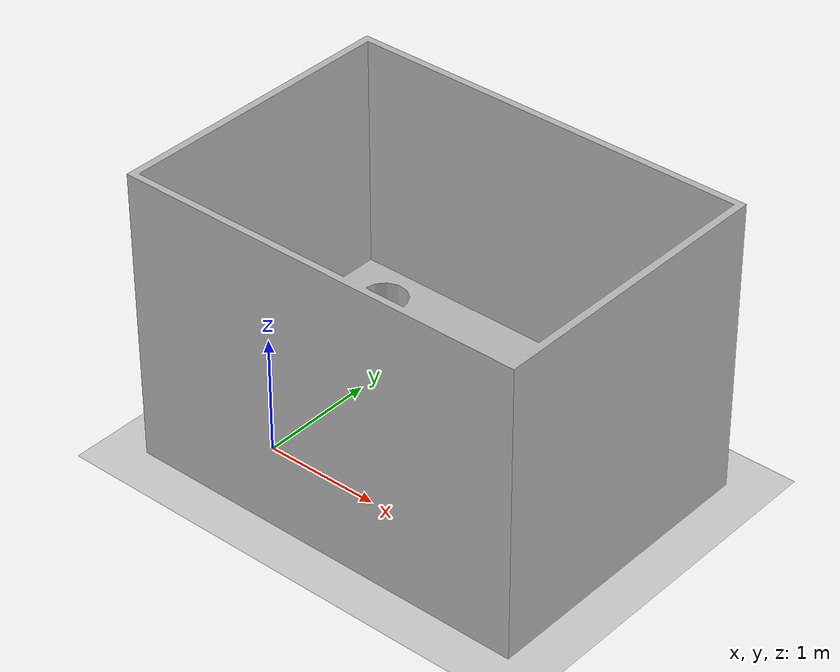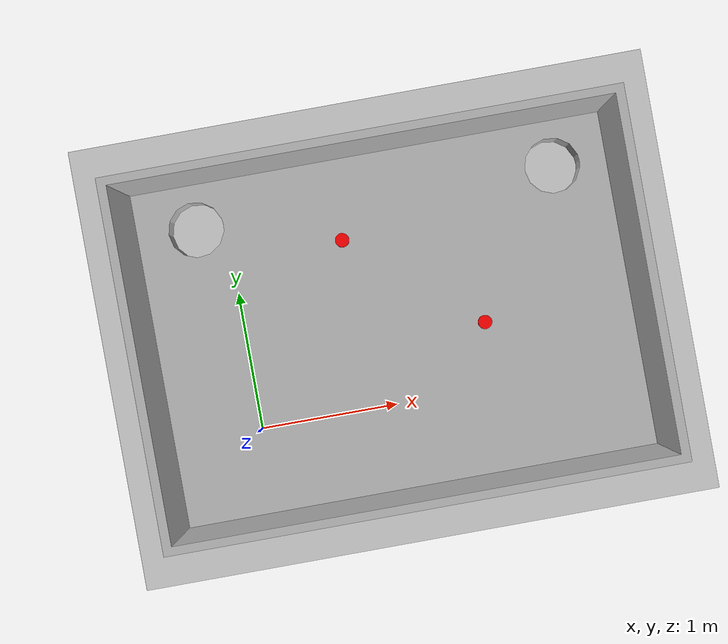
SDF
<sdf version="1.6">
 <world name="default">
  <light name="sun" type="directional">
   <pose>0 0 10 0 -0 0</pose>
   <diffuse>0.8 0.8 0.8 1</diffuse>
   <specular>0.1 0.1 0.1 1</specular>
   <attenuation>
    <range>1000</range>
    <constant>0.9</constant>
    <linear>0.01</linear>
    <quadratic>0.001</quadratic>
   </attenuation>
   <direction>-0.5 0.5 -1</direction>
  </light>
  <model name="ground_plane">
   <static>1</static>
   <link name="link">
    <collision name="collision">
     <geometry><plane><normal>0 0 1</normal><size>100 100</size></plane></geometry>
     <surface><friction><ode><mu>100</mu><mu2>50</mu2></ode></friction></surface>
    </collision>
    <visual name="visual">
     <cast_shadows>0</cast_shadows>
     <geometry><plane><normal>0 0 1</normal><size>100 100</size></plane></geometry>
     <material>
      <script><uri>file://media/materials/scripts/gazebo.material</uri><name>Gazebo/Grey</name></script>
     </material>
    </visual>
   </link>
  </model>
  <gravity>0 0 -9.8</gravity>
  <magnetic_field>6e-06 2.3e-05 -4.2e-05</magnetic_field>
  <atmosphere type="adiabatic"/>
  <physics name="default_physics" default="0" type="ode">
   <max_step_size>0.001</max_step_size>
   <real_time_factor>1</real_time_factor>
   <real_time_update_rate>1000</real_time_update_rate>
  </physics>
  <scene><ambient>0.4 0.4 0.4 1</ambient><background>0.7 0.7 0.7 1</background><shadows>1</shadows></scene>
  <spherical_coordinates>
   <surface_model>EARTH_WGS84</surface_model>
   <latitude_deg>0</latitude_deg>
   <longitude_deg>0</longitude_deg>
   <elevation>0</elevation>
   <heading_deg>0</heading_deg>
  </spherical_coordinates>
  <model name="Part1">
   <link name="urdf_package">
    <inertial>
     <pose>1.6811 -0.55929 1.1918 0 -0 0</pose>
     <mass>5806.9</mass>
     <inertia>
      <ixx>6148.39</ixx>
      <ixy>-0.71938</ixy>
      <ixz>-2.11248</ixz>
      <iyy>11071.9</iyy>
      <iyz>32.929</iyz>
      <izz>9442.58</izz>
     </inertia>
    </inertial>
    <collision name="urdf_package_collision">
     <pose>0 0 0 1.5708 -0 0</pose>
     <geometry>
      <mesh>
       <scale>1 1 1</scale>
       <uri>../catkin_ws/src/project_x_ecobot/data/urdf_package/meshes/turtlebot_world_col.STL</uri>
      </mesh>
     </geometry>
    </collision>
    <visual name="urdf_package_visual">
     <pose>0 0 0 1.5708 -0 0</pose>
     <geometry>
      <mesh>
       <scale>1 1 1</scale>
       <uri>../catkin_ws/src/project_x_ecobot/data/urdf_package/meshes/turtlebot_world.STL</uri>
      </mesh>
     </geometry>
    </visual>
   </link>
   <pose>-0.599242 -0.600007 -0.001892 -1.5708 3e-06 0.000398</pose>
  </model>
  <model name="trash_unit_cylinder_0">
   <link name="link">
    <inertial>
     <mass>0.01</mass>
     <inertia><ixx>0.145833</ixx><ixy>0</ixy><ixz>0</ixz><iyy>0.145833</iyy><iyz>0</iyz><izz>0.125</izz></inertia>
    </inertial>
    <visual name="visual">
     <geometry><cylinder><radius>0.05</radius><length>0.1</length></cylinder></geometry>
     <material>
      <script><name>Gazebo/Grey</name><uri>file://media/materials/scripts/gazebo.material</uri></script>
      <ambient>1 0 0 1</ambient>
      <diffuse>1 0 0 1</diffuse>
      <specular>0.01 0.01 0.01 1</specular>
      <emissive>0 0 0 1</emissive>
      <shader type="vertex"><normal_map>__default__</normal_map></shader>
     </material>
    </visual>
    <collision name="collision">
     <geometry><cylinder><radius>0.05</radius><length>0.1</length></cylinder></geometry>
     <surface>
      <friction>
       <ode><mu>1</mu><mu2>1</mu2><fdir1>0 0 0</fdir1><slip1>0</slip1><slip2>0</slip2></ode>
       <torsional>
        <coefficient>1</coefficient>
        <patch_radius>0</patch_radius>
        <surface_radius>0</surface_radius>
        <use_patch_radius>1</use_patch_radius>
        <ode><slip>0</slip></ode>
       </torsional>
      </friction>
      <bounce><restitution_coefficient>0</restitution_coefficient><threshold>1e+06</threshold></bounce>
      <contact>
       <collide_without_contact>0</collide_without_contact>
       <collide_without_contact_bitmask>1</collide_without_contact_bitmask>
       <collide_bitmask>1</collide_bitmask>
       <ode>
        <soft_cfm>0</soft_cfm>
        <soft_erp>0.2</soft_erp>
        <kp>1e+13</kp>
        <kd>1</kd>
        <max_vel>0.01</max_vel>
        <min_depth>0</min_depth>
       </ode>
       <bullet>
        <split_impulse>1</split_impulse>
        <split_impulse_penetration_threshold>-0.01</split_impulse_penetration_threshold>
        <soft_cfm>0</soft_cfm>
        <soft_erp>0.2</soft_erp>
        <kp>1e+13</kp>
        <kd>1</kd>
       </bullet>
      </contact>
     </surface>
    </collision>
   </link>
   <static>0</static>
   <pose>0.82062 1.23866 0.548112 -6.9e-05 0.000328 0.002879</pose>
  </model>
  <model name="trash_unit_cylinder_0_clone_0">
   <link name="link">
    <inertial>
     <mass>0.01</mass>
     <inertia><ixx>0.145833</ixx><ixy>0</ixy><ixz>0</ixz><iyy>0.145833</iyy><iyz>0</iyz><izz>0.125</izz></inertia>
    </inertial>
    <visual name="visual">
     <geometry><cylinder><radius>0.05</radius><length>0.1</length></cylinder></geometry>
     <material>
      <script><name>Gazebo/Grey</name><uri>file://media/materials/scripts/gazebo.material</uri></script>
      <ambient>1 0 0 1</ambient>
      <diffuse>1 0 0 1</diffuse>
      <specular>0.01 0.01 0.01 1</specular>
      <emissive>0 0 0 1</emissive>
      <shader type="vertex"><normal_map>__default__</normal_map></shader>
     </material>
    </visual>
    <collision name="collision">
     <geometry><cylinder><radius>0.05</radius><length>0.1</length></cylinder></geometry>
     <surface>
      <friction>
       <ode><mu>1</mu><mu2>1</mu2><fdir1>0 0 0</fdir1><slip1>0</slip1><slip2>0</slip2></ode>
       <torsional>
        <coefficient>1</coefficient>
        <patch_radius>0</patch_radius>
        <surface_radius>0</surface_radius>
        <use_patch_radius>1</use_patch_radius>
        <ode><slip>0</slip></ode>
       </torsional>
      </friction>
      <bounce><restitution_coefficient>0</restitution_coefficient><threshold>1e+06</threshold></bounce>
      <contact>
       <collide_without_contact>0</collide_without_contact>
       <collide_without_contact_bitmask>1</collide_without_contact_bitmask>
       <collide_bitmask>1</collide_bitmask>
       <ode>
        <soft_cfm>0</soft_cfm>
        <soft_erp>0.2</soft_erp>
        <kp>1e+13</kp>
        <kd>1</kd>
        <max_vel>0.01</max_vel>
        <min_depth>0</min_depth>
       </ode>
       <bullet>
        <split_impulse>1</split_impulse>
        <split_impulse_penetration_threshold>-0.01</split_impulse_penetration_threshold>
        <soft_cfm>0</soft_cfm>
        <soft_erp>0.2</soft_erp>
        <kp>1e+13</kp>
        <kd>1</kd>
       </bullet>
      </contact>
     </surface>
    </collision>
   </link>
   <static>0</static>
   <pose>1.72474 0.47953 0.548102 0.00021 3.9e-05 0.00466</pose>
  </model>
 </world>
</sdf>
